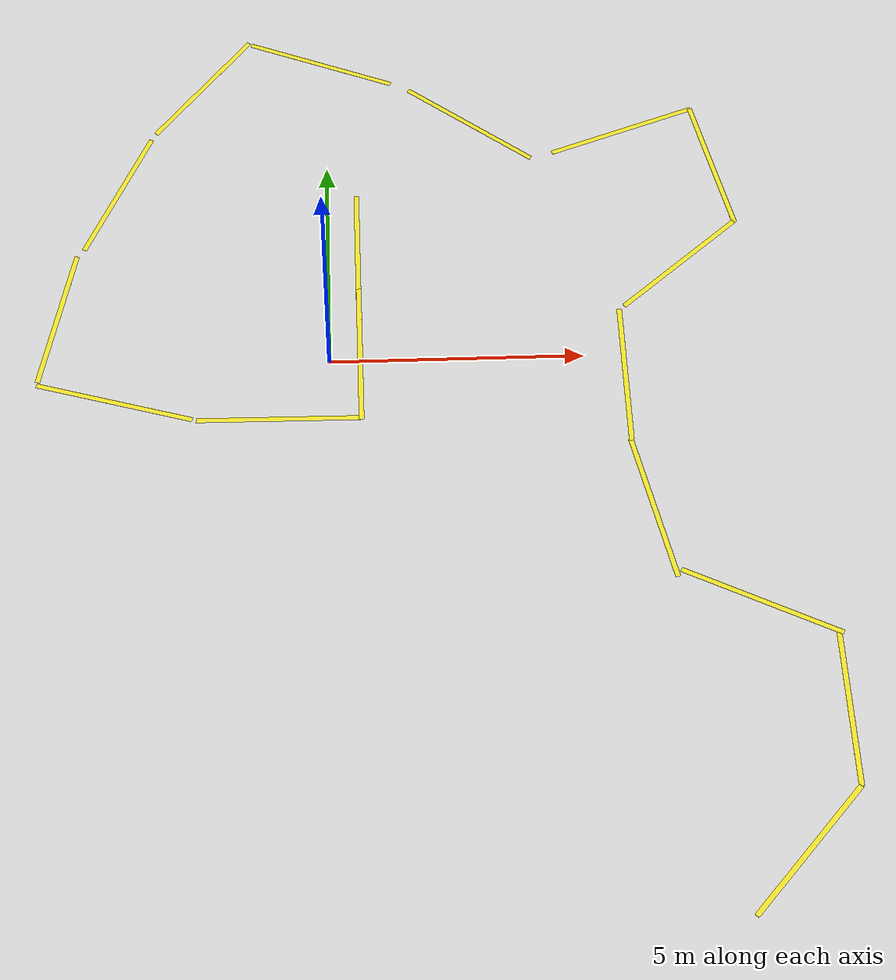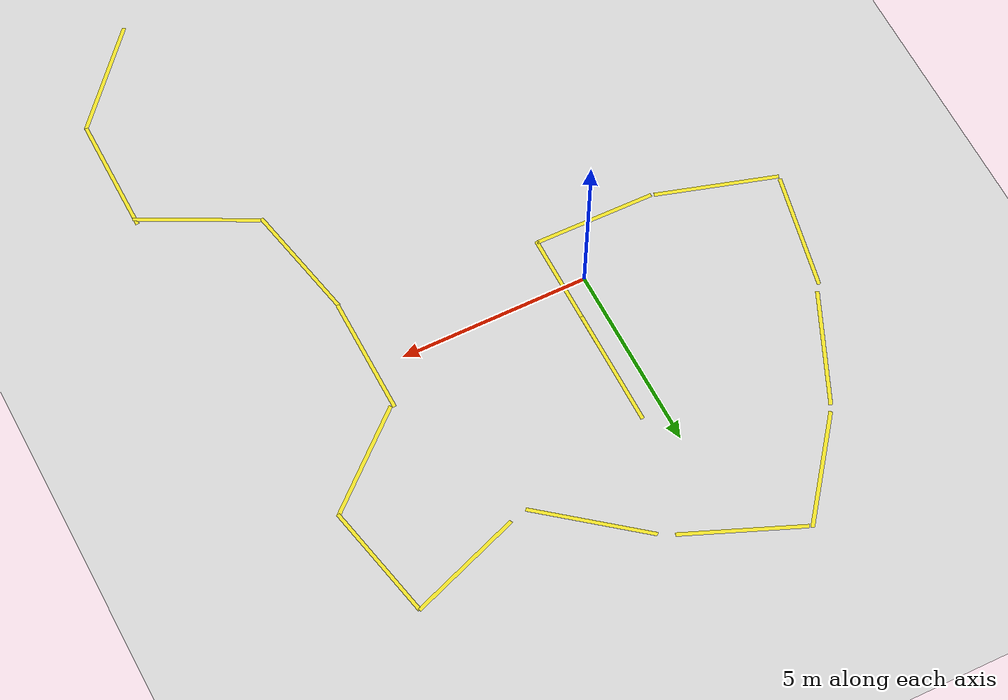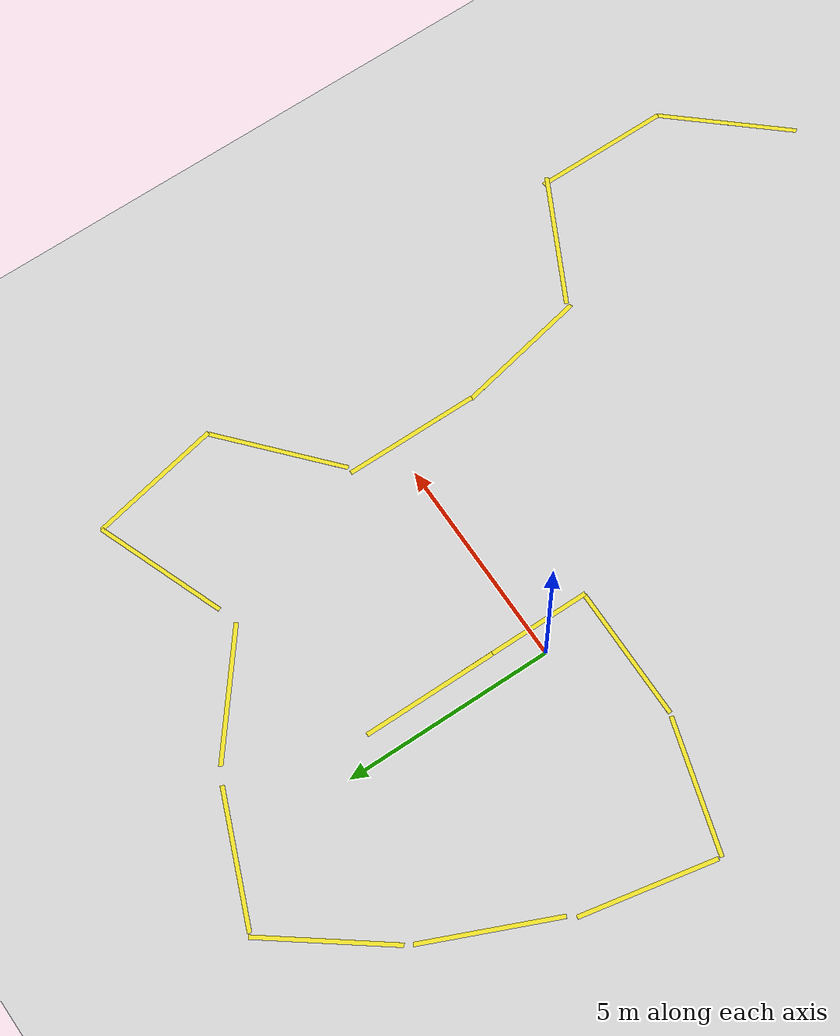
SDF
<sdf version="1.6">
 <world name="default">
  <light name="sun" type="directional">
   <pose>0 0 10 0 -0 0</pose>
   <diffuse>0.8 0.8 0.8 1</diffuse>
   <specular>0.1 0.1 0.1 1</specular>
   <attenuation>
    <range>1000</range>
    <constant>0.9</constant>
    <linear>0.01</linear>
    <quadratic>0.001</quadratic>
   </attenuation>
   <direction>-0.5 0.5 -1</direction>
  </light>
  <model name="ground_plane">
   <static>1</static>
   <link name="link">
    <collision name="collision">
     <geometry><plane><normal>0 0 1</normal><size>100 100</size></plane></geometry>
     <surface><friction><ode><mu>100</mu><mu2>50</mu2></ode></friction></surface>
    </collision>
    <visual name="visual">
     <cast_shadows>0</cast_shadows>
     <geometry><plane><normal>0 0 1</normal><size>100 100</size></plane></geometry>
     <material>
      <script><uri>file://media/materials/scripts/gazebo.material</uri><name>Gazebo/Grey</name></script>
     </material>
    </visual>
   </link>
  </model>
  <gravity>0 0 -9.8</gravity>
  <magnetic_field>6e-06 2.3e-05 -4.2e-05</magnetic_field>
  <atmosphere type="adiabatic"/>
  <physics name="default_physics" default="0" type="ode">
   <max_step_size>0.001</max_step_size>
   <real_time_factor>1</real_time_factor>
   <real_time_update_rate>1000</real_time_update_rate>
  </physics>
  <scene><ambient>0.4 0.4 0.4 1</ambient><background>0.7 0.7 0.7 1</background><shadows>1</shadows></scene>
  <spherical_coordinates>
   <surface_model>EARTH_WGS84</surface_model>
   <latitude_deg>0</latitude_deg>
   <longitude_deg>0</longitude_deg>
   <elevation>0</elevation>
   <heading_deg>0</heading_deg>
  </spherical_coordinates>
  <model name="yellow line">
   <static>1</static>
   <link name="link_ground">
    <collision name="collision">
     <geometry><plane><normal>0 0 1</normal><size>0.1 3.2</size></plane></geometry>
     <surface><friction><ode><mu>100</mu><mu2>50</mu2></ode></friction></surface>
    </collision>
    <visual name="visual_ground">
     <cast_shadows>0</cast_shadows>
     <geometry><plane><normal>0 0 1</normal><size>0.1 3.2</size></plane></geometry>
     <material>
      <script><uri>file://media/materials/scripts/gazebo.material</uri><name>Gazebo/Yellow</name></script>
     </material>
    </visual>
   </link>
   <pose>8.2 -10.8 0 0 0 -0.719999</pose>
  </model>
  <model name="yellow line_0">
   <static>1</static>
   <link name="link_ground">
    <collision name="collision">
     <geometry><plane><normal>0 0 1</normal><size>0.1 3.2</size></plane></geometry>
     <surface><friction><ode><mu>100</mu><mu2>50</mu2></ode></friction></surface>
    </collision>
    <visual name="visual_ground">
     <cast_shadows>0</cast_shadows>
     <geometry><plane><normal>0 0 1</normal><size>0.1 3.2</size></plane></geometry>
     <material>
      <script><uri>file://media/materials/scripts/gazebo.material</uri><name>Gazebo/Yellow</name></script>
     </material>
    </visual>
   </link>
   <pose>9.25747 -8 0 0 -0 0</pose>
  </model>
  <model name="yellow line_1">
   <static>1</static>
   <link name="link_ground">
    <collision name="collision">
     <geometry><plane><normal>0 0 1</normal><size>0.1 3.2</size></plane></geometry>
     <surface><friction><ode><mu>100</mu><mu2>50</mu2></ode></friction></surface>
    </collision>
    <visual name="visual_ground">
     <cast_shadows>0</cast_shadows>
     <geometry><plane><normal>0 0 1</normal><size>0.1 3.2</size></plane></geometry>
     <material>
      <script><uri>file://media/materials/scripts/gazebo.material</uri><name>Gazebo/Yellow</name></script>
     </material>
    </visual>
   </link>
   <pose>7.9 -5.8 0.1 0 -0 1.1</pose>
  </model>
  <model name="yellow line_3">
   <static>1</static>
   <link name="link_ground">
    <collision name="collision">
     <geometry><plane><normal>0 0 1</normal><size>0.1 3.2</size></plane></geometry>
     <surface><friction><ode><mu>100</mu><mu2>50</mu2></ode></friction></surface>
    </collision>
    <visual name="visual_ground">
     <cast_shadows>0</cast_shadows>
     <geometry><plane><normal>0 0 1</normal><size>0.1 3.2</size></plane></geometry>
     <material>
      <script><uri>file://media/materials/scripts/gazebo.material</uri><name>Gazebo/Yellow</name></script>
     </material>
    </visual>
   </link>
   <pose>5.8 -0.45 0 0 -0 0</pose>
  </model>
  <model name="yellow line_4">
   <static>1</static>
   <link name="link_ground">
    <collision name="collision">
     <geometry><plane><normal>0 0 1</normal><size>0.1 3.2</size></plane></geometry>
     <surface><friction><ode><mu>100</mu><mu2>50</mu2></ode></friction></surface>
    </collision>
    <visual name="visual_ground">
     <cast_shadows>0</cast_shadows>
     <geometry><plane><normal>0 0 1</normal><size>0.1 3.2</size></plane></geometry>
     <material>
      <script><uri>file://media/materials/scripts/gazebo.material</uri><name>Gazebo/Yellow</name></script>
     </material>
    </visual>
   </link>
   <pose>7.1 2.2 0.1 0 0 -0.85</pose>
  </model>
  <model name="yellow line_5">
   <static>1</static>
   <link name="link_ground">
    <collision name="collision">
     <geometry><plane><normal>0 0 1</normal><size>0.1 3.2</size></plane></geometry>
     <surface><friction><ode><mu>100</mu><mu2>50</mu2></ode></friction></surface>
    </collision>
    <visual name="visual_ground">
     <cast_shadows>0</cast_shadows>
     <geometry><plane><normal>0 0 1</normal><size>0.1 3.2</size></plane></geometry>
     <material>
      <script><uri>file://media/materials/scripts/gazebo.material</uri><name>Gazebo/Yellow</name></script>
     </material>
    </visual>
   </link>
   <pose>8 4.8 0.1 0 -0 0.199997</pose>
  </model>
  <model name="yellow line_6">
   <static>1</static>
   <link name="link_ground">
    <collision name="collision">
     <geometry><plane><normal>0 0 1</normal><size>0.1 3.2</size></plane></geometry>
     <surface><friction><ode><mu>100</mu><mu2>50</mu2></ode></friction></surface>
    </collision>
    <visual name="visual_ground">
     <cast_shadows>0</cast_shadows>
     <geometry><plane><normal>0 0 1</normal><size>0.1 3.2</size></plane></geometry>
     <material>
      <script><uri>file://media/materials/scripts/gazebo.material</uri><name>Gazebo/Yellow</name></script>
     </material>
    </visual>
   </link>
   <pose>6.2 5.8 0.1 0 -0 1.93</pose>
  </model>
  <model name="yellow line_7">
   <static>1</static>
   <link name="link_ground">
    <collision name="collision">
     <geometry><plane><normal>0 0 1</normal><size>0.1 3.2</size></plane></geometry>
     <surface><friction><ode><mu>100</mu><mu2>50</mu2></ode></friction></surface>
    </collision>
    <visual name="visual_ground">
     <cast_shadows>0</cast_shadows>
     <geometry><plane><normal>0 0 1</normal><size>0.1 3.2</size></plane></geometry>
     <material>
      <script><uri>file://media/materials/scripts/gazebo.material</uri><name>Gazebo/Yellow</name></script>
     </material>
    </visual>
   </link>
   <pose>3 6.1 0.1 0 -0 0.900001</pose>
  </model>
  <model name="yellow line_8">
   <static>1</static>
   <link name="link_ground">
    <collision name="collision">
     <geometry><plane><normal>0 0 1</normal><size>0.1 3.2</size></plane></geometry>
     <surface><friction><ode><mu>100</mu><mu2>50</mu2></ode></friction></surface>
    </collision>
    <visual name="visual_ground">
     <cast_shadows>0</cast_shadows>
     <geometry><plane><normal>0 0 1</normal><size>0.1 3.2</size></plane></geometry>
     <material>
      <script><uri>file://media/materials/scripts/gazebo.material</uri><name>Gazebo/Yellow</name></script>
     </material>
    </visual>
   </link>
   <pose>-0.1 7.9 0.1 0 -0 1.18</pose>
  </model>
  <model name="yellow line_9">
   <static>1</static>
   <link name="link_ground">
    <collision name="collision">
     <geometry><plane><normal>0 0 1</normal><size>0.1 3.2</size></plane></geometry>
     <surface><friction><ode><mu>100</mu><mu2>50</mu2></ode></friction></surface>
    </collision>
    <visual name="visual_ground">
     <cast_shadows>0</cast_shadows>
     <geometry><plane><normal>0 0 1</normal><size>0.1 3.2</size></plane></geometry>
     <material>
      <script><uri>file://media/materials/scripts/gazebo.material</uri><name>Gazebo/Yellow</name></script>
     </material>
    </visual>
   </link>
   <pose>-2.6 7.3 0.1 0 0 -0.65</pose>
  </model>
  <model name="yellow line_11">
   <static>1</static>
   <link name="link_ground">
    <collision name="collision">
     <geometry><plane><normal>0 0 1</normal><size>0.1 3.2</size></plane></geometry>
     <surface><friction><ode><mu>100</mu><mu2>50</mu2></ode></friction></surface>
    </collision>
    <visual name="visual_ground">
     <cast_shadows>0</cast_shadows>
     <geometry><plane><normal>0 0 1</normal><size>0.1 3.2</size></plane></geometry>
     <material>
      <script><uri>file://media/materials/scripts/gazebo.material</uri><name>Gazebo/Yellow</name></script>
     </material>
    </visual>
   </link>
   <pose>-4.3 4.4 0.1 0 -0 2.73</pose>
  </model>
  <model name="yellow line_12">
   <static>1</static>
   <link name="link_ground">
    <collision name="collision">
     <geometry><plane><normal>0 0 1</normal><size>0.1 3.2</size></plane></geometry>
     <surface><friction><ode><mu>100</mu><mu2>50</mu2></ode></friction></surface>
    </collision>
    <visual name="visual_ground">
     <cast_shadows>0</cast_shadows>
     <geometry><plane><normal>0 0 1</normal><size>0.1 3.2</size></plane></geometry>
     <material>
      <script><uri>file://media/materials/scripts/gazebo.material</uri><name>Gazebo/Yellow</name></script>
     </material>
    </visual>
   </link>
   <pose>-5.4 1.2 0.1 0 0 -0.2</pose>
  </model>
  <model name="yellow line_13">
   <static>1</static>
   <link name="link_ground">
    <collision name="collision">
     <geometry><plane><normal>0 0 1</normal><size>0.1 3.2</size></plane></geometry>
     <surface><friction><ode><mu>100</mu><mu2>50</mu2></ode></friction></surface>
    </collision>
    <visual name="visual_ground">
     <cast_shadows>0</cast_shadows>
     <geometry><plane><normal>0 0 1</normal><size>0.1 3.2</size></plane></geometry>
     <material>
      <script><uri>file://media/materials/scripts/gazebo.material</uri><name>Gazebo/Yellow</name></script>
     </material>
    </visual>
   </link>
   <pose>-4.2 -0.9 0.1 0 -0 1.28</pose>
  </model>
  <model name="yellow line_14">
   <static>1</static>
   <link name="link_ground">
    <collision name="collision">
     <geometry><plane><normal>0 0 1</normal><size>0.1 3.2</size></plane></geometry>
     <surface><friction><ode><mu>100</mu><mu2>50</mu2></ode></friction></surface>
    </collision>
    <visual name="visual_ground">
     <cast_shadows>0</cast_shadows>
     <geometry><plane><normal>0 0 1</normal><size>0.1 3.2</size></plane></geometry>
     <material>
      <script><uri>file://media/materials/scripts/gazebo.material</uri><name>Gazebo/Yellow</name></script>
     </material>
    </visual>
   </link>
   <pose>0.6 0.15 0.1 0 -0 0</pose>
  </model>
  <model name="yellow line_15">
   <static>1</static>
   <link name="link_ground">
    <collision name="collision">
     <geometry><plane><normal>0 0 1</normal><size>0.1 3.2</size></plane></geometry>
     <surface><friction><ode><mu>100</mu><mu2>50</mu2></ode></friction></surface>
    </collision>
    <visual name="visual_ground">
     <cast_shadows>0</cast_shadows>
     <geometry><plane><normal>0 0 1</normal><size>0.1 3.2</size></plane></geometry>
     <material>
      <script><uri>file://media/materials/scripts/gazebo.material</uri><name>Gazebo/Yellow</name></script>
     </material>
    </visual>
   </link>
   <pose>-1 -1.4 0.1 0 0 -1.58</pose>
  </model>
  <model name="yellow line_16">
   <static>1</static>
   <link name="link_ground">
    <collision name="collision">
     <geometry><plane><normal>0 0 1</normal><size>0.1 3.2</size></plane></geometry>
     <surface><friction><ode><mu>100</mu><mu2>50</mu2></ode></friction></surface>
    </collision>
    <visual name="visual_ground">
     <cast_shadows>0</cast_shadows>
     <geometry><plane><normal>0 0 1</normal><size>0.1 3.2</size></plane></geometry>
     <material>
      <script><uri>file://media/materials/scripts/gazebo.material</uri><name>Gazebo/Yellow</name></script>
     </material>
    </visual>
   </link>
   <pose>0.596707 2.57345 0.1 0 -0 0</pose>
  </model>
  <model name="yellow line_10">
   <static>1</static>
   <link name="link_ground">
    <collision name="collision">
     <geometry><plane><normal>0 0 1</normal><size>0.1 3.2</size></plane></geometry>
     <surface><friction><ode><mu>100</mu><mu2>50</mu2></ode></friction></surface>
    </collision>
    <visual name="visual_ground">
     <cast_shadows>0</cast_shadows>
     <geometry><plane><normal>0 0 1</normal><size>0.1 3.2</size></plane></geometry>
     <material>
      <script><uri>file://media/materials/scripts/gazebo.material</uri><name>Gazebo/Yellow</name></script>
     </material>
    </visual>
   </link>
   <pose>6.1 -3.6 0 0 -0 0.2</pose>
  </model>
 </world>
</sdf>
